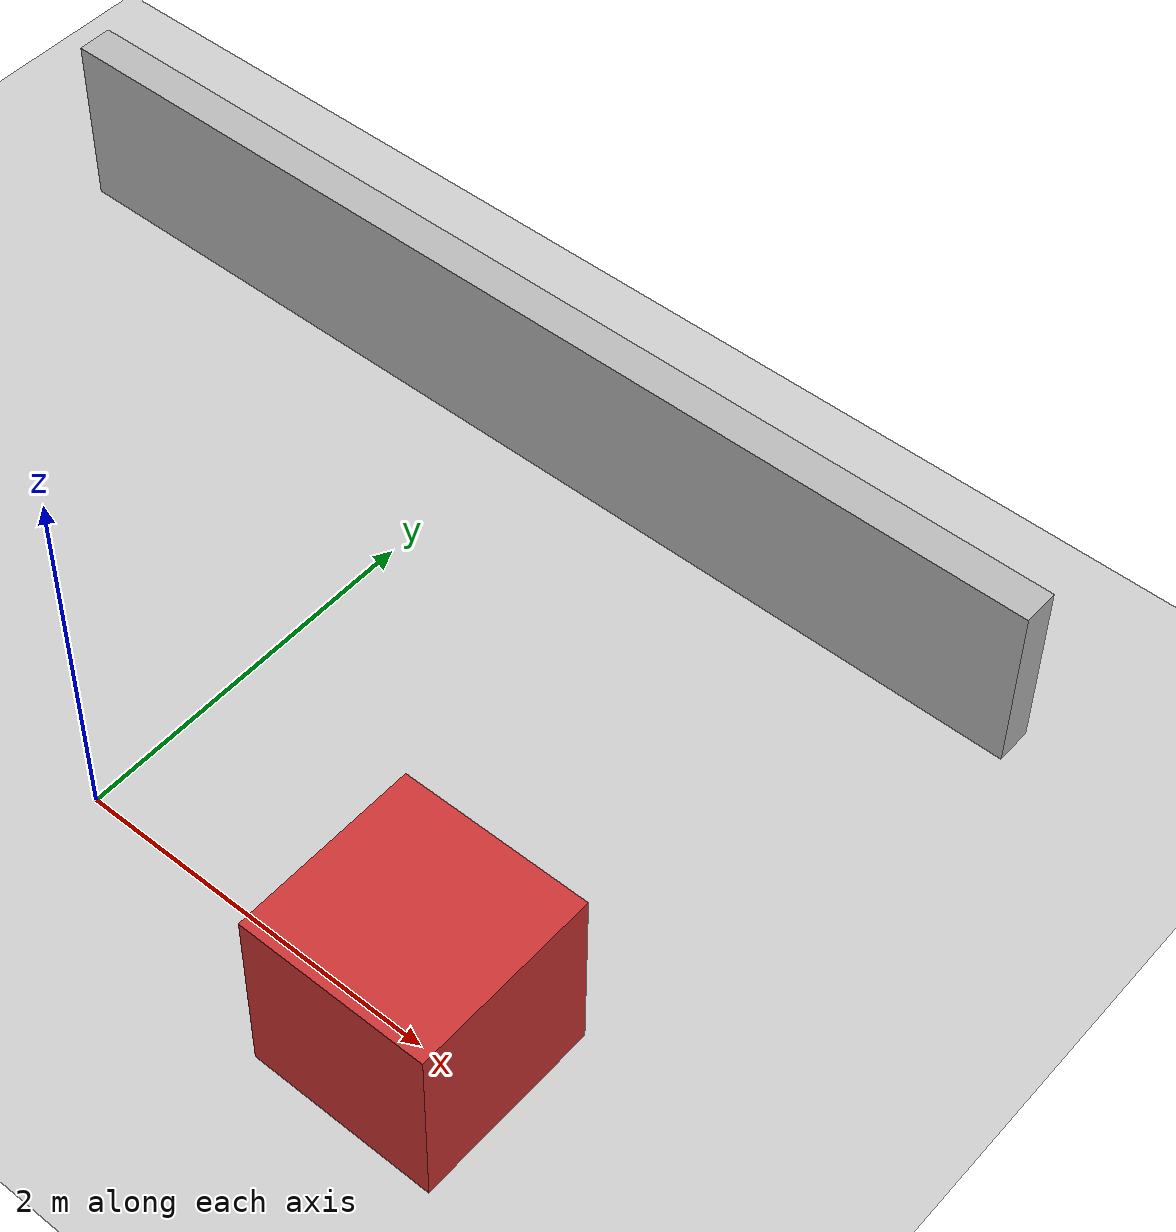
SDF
<?xml version="1.0"?>
<sdf version="1.9">
  <world name="empty_world">

    <physics name="physics" type="ignored">
      <max_step_size>0.001</max_step_size>
      <real_time_factor>1.0</real_time_factor>
    </physics>

    <plugin
      filename="gz-sim-physics-system"
      name="gz::sim::systems::Physics"/>

    <plugin
      filename="gz-sim-user-commands-system"
      name="gz::sim::systems::UserCommands"/>

    <plugin
      filename="gz-sim-scene-broadcaster-system"
      name="gz::sim::systems::SceneBroadcaster"/>

    <plugin
      filename="gz-sim-sensors-system"
      name="gz::sim::systems::Sensors">

      <render_engine>ogre2</render_engine>
    </plugin>

    <light type="directional" name="sun">
      <cast_shadows>true</cast_shadows>
      <pose>0 0 10 0 0 0</pose>
      <diffuse>0.8 0.8 0.8 1</diffuse>
      <specular>0.2 0.2 0.2 1</specular>
      <direction>-0.5 0.1 -0.9</direction>
    </light>

    <model name="ground_plane">
      <static>true</static>

      <link name="link">
        <collision name="collision">
          <geometry>
            <plane>
              <normal>0 0 1</normal>
              <size>100 100</size>
            </plane>
          </geometry>
        </collision>

        <visual name="visual">
          <geometry>
            <plane>
              <normal>0 0 1</normal>
              <size>100 100</size>
            </plane>
          </geometry>
          <material>
            <ambient>0.8 0.8 0.8 1</ambient>
            <diffuse>0.8 0.8 0.8 1</diffuse>
          </material>
        </visual>
      </link>
    </model>

    <model name="box_1">
      <static>true</static>

      <pose>2 0 0.5 0 0 0</pose>

      <link name="link">
        <collision name="collision">
          <geometry>
            <box>
              <size>1 1 1</size>
            </box>
          </geometry>
        </collision>

        <visual name="visual">
          <geometry>
            <box>
              <size>1 1 1</size>
            </box>
          </geometry>

          <material>
            <ambient>0.8 0.2 0.2 1</ambient>
            <diffuse>0.8 0.2 0.2 1</diffuse>
          </material>
        </visual>
      </link>
    </model>

    <model name="wall">
      <static>true</static>

      <pose>0 3 0.5 0 0 0</pose>

      <link name="link">
        <collision name="collision">
          <geometry>
            <box>
              <size>6 0.2 1</size>
            </box>
          </geometry>
        </collision>

        <visual name="visual">
          <geometry>
            <box>
              <size>6 0.2 1</size>
            </box>
          </geometry>
        </visual>
      </link>
    </model>

  </world>
</sdf>
